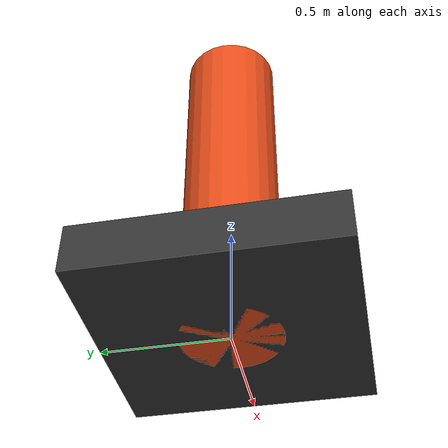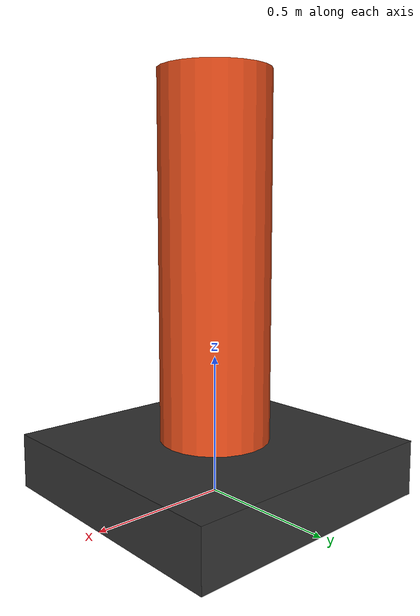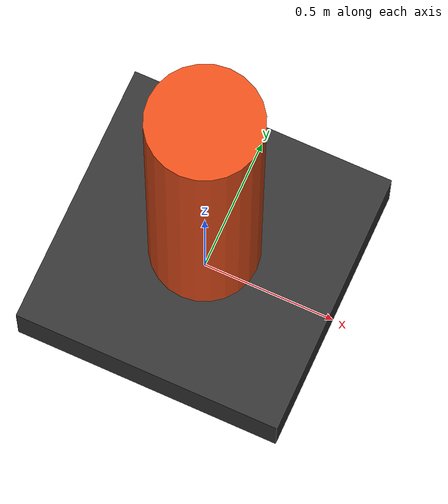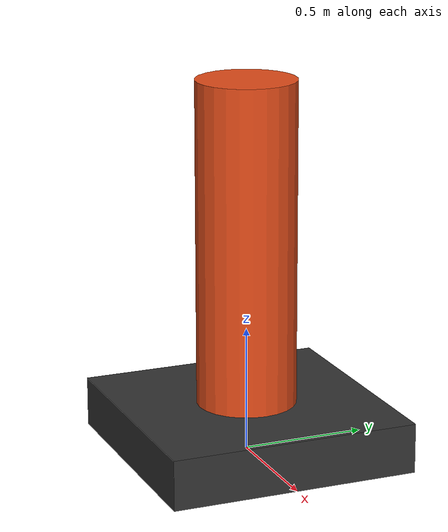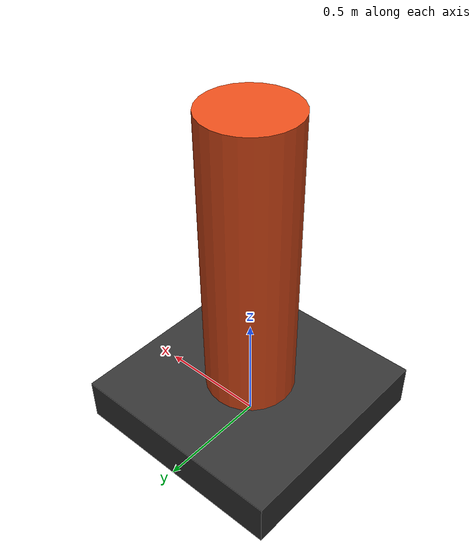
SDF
<?xml version="1.0" ?>
<sdf version="1.7">
  <model name="fox_beacon">
    <static>true</static>
    <link name="body">
      <visual name="mast">
        <geometry>
          <cylinder>
            <radius>0.2</radius>
            <length>1.5</length>
          </cylinder>
        </geometry>
        <pose>0 0 0.75 0 0 0</pose>
        <material>
          <ambient>0.9 0.3 0.1 1</ambient>
          <diffuse>0.9 0.3 0.1 1</diffuse>
        </material>
      </visual>
      <visual name="base">
        <geometry>
          <box>
            <size>1 1 0.2</size>
          </box>
        </geometry>
        <pose>0 0 0.1 0 0 0</pose>
        <material>
          <ambient>0.2 0.2 0.2 1</ambient>
          <diffuse>0.2 0.2 0.2 1</diffuse>
        </material>
      </visual>
    </link>
  </model>
</sdf>
